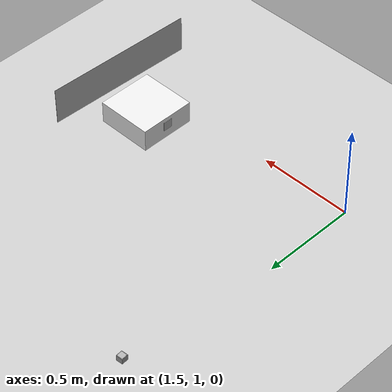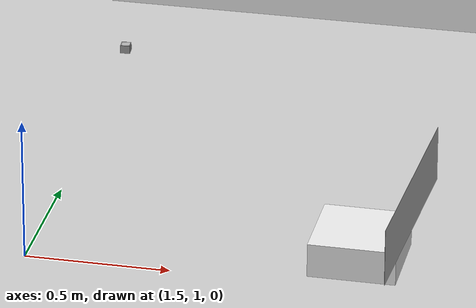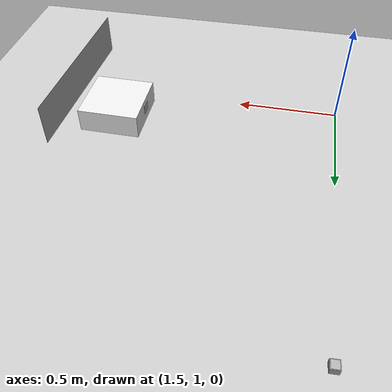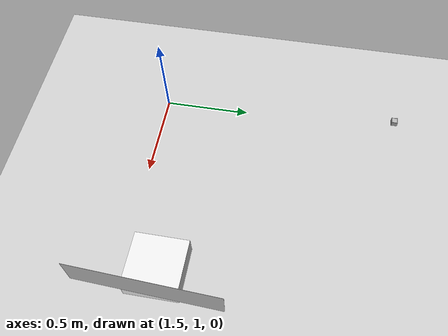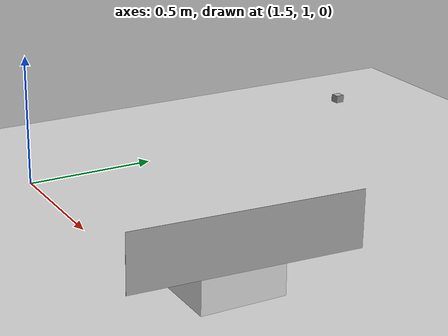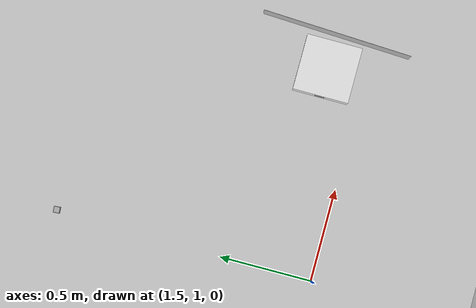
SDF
<sdf version="1.6">
 <world name="default">
  <model name="ground_plane">
   <static>1</static>
   <link name="link">
    <collision name="collision">
     <geometry><plane><normal>0 0 1</normal><size>100 100</size></plane></geometry>
     <surface><friction><ode><mu>100</mu><mu2>50</mu2></ode></friction></surface>
    </collision>
    <visual name="visual">
     <cast_shadows>0</cast_shadows>
     <geometry><plane><normal>0 0 1</normal><size>100 100</size></plane></geometry>
     <material>
      <script><uri>file://media/materials/scripts/gazebo.material</uri><name>Gazebo/Grey</name></script>
     </material>
    </visual>
   </link>
  </model>
  <model name="charge_pile_2">
   <link name="link_0">
    <pose>0.001175 0.064666 -0.007829 0 -0 0</pose>
    <inertial>
     <mass>1</mass>
     <inertia>
      <ixx>0.166667</ixx>
      <ixy>0</ixy>
      <ixz>0</ixz>
      <iyy>0.166667</iyy>
      <iyz>0</iyz>
      <izz>0.166667</izz>
     </inertia>
    </inertial>
    <visual name="visual">
     <geometry><box><size>0.3 0.3 0.12</size></box></geometry>
     <material>
      <lighting>1</lighting>
      <script><uri>file://media/materials/scripts/gazebo.material</uri><name>Gazebo/White</name></script>
      <ambient>0.3 0.3 0.3 1</ambient>
      <diffuse>0.7 0.7 0.7 1</diffuse>
      <specular>0.01 0.01 0.01 1</specular>
      <emissive>0 0 1 1</emissive>
      <shader type="vertex"><normal_map>__default__</normal_map></shader>
     </material>
    </visual>
    <collision name="collision">
     <geometry><box><size>0.3 0.3 0.12</size></box></geometry>
     <surface>
      <friction><ode><mu>100</mu><mu2>50</mu2></ode></friction>
      <bounce><restitution_coefficient>0</restitution_coefficient><threshold>1e+06</threshold></bounce>
      <contact>
       <collide_without_contact>0</collide_without_contact>
       <collide_without_contact_bitmask>1</collide_without_contact_bitmask>
       <collide_bitmask>1</collide_bitmask>
       <ode>
        <soft_cfm>0</soft_cfm>
        <soft_erp>0.2</soft_erp>
        <kp>1e+13</kp>
        <kd>1</kd>
        <max_vel>0.01</max_vel>
        <min_depth>0</min_depth>
       </ode>
       <bullet>
        <split_impulse>1</split_impulse>
        <split_impulse_penetration_threshold>-0.01</split_impulse_penetration_threshold>
        <soft_cfm>0</soft_cfm>
        <soft_erp>0.2</soft_erp>
        <kp>1e+13</kp>
        <kd>1</kd>
       </bullet>
      </contact>
     </surface>
    </collision>
   </link>
   <model name="ar_box0_50">
    <link name="link_0">
     <inertial>
      <mass>1.87342e-05</mass>
      <inertia>
       <ixx>9.25984e-08</ixx>
       <ixy>0</ixy>
       <ixz>0</ixz>
       <iyy>1.0155e-07</iyy>
       <iyz>0</iyz>
       <izz>1.22113e-07</izz>
      </inertia>
     </inertial>
     <visual name="visual">
      <geometry><box><size>0.05 0.05 0.05</size></box></geometry>
      <material>
       <lighting>1</lighting>
       <script>
        <uri>model://ar_box0_50/materials/scripts</uri>
        <uri>model://ar_box0_50/materials/textures</uri>
        <name>ArBox050/Image</name>
       </script>
       <ambient>0.3 0.3 0.3 1</ambient>
       <diffuse>0.7 0.7 0.7 1</diffuse>
       <specular>0.01 0.01 0.01 1</specular>
       <emissive>1 1 1 1</emissive>
      </material>
      <cast_shadows>0</cast_shadows>
     </visual>
     <collision name="collision">
      <geometry><box><size>0.05 0.05 0.05</size></box></geometry>
      <surface>
       <friction><ode><mu>100</mu><mu2>50</mu2></ode></friction>
       <bounce><restitution_coefficient>0</restitution_coefficient><threshold>1e+06</threshold></bounce>
       <contact>
        <collide_without_contact>0</collide_without_contact>
        <collide_without_contact_bitmask>1</collide_without_contact_bitmask>
        <collide_bitmask>1</collide_bitmask>
        <ode>
         <soft_cfm>0</soft_cfm>
         <soft_erp>0.2</soft_erp>
         <kp>1e+13</kp>
         <kd>1</kd>
         <max_vel>0.01</max_vel>
         <min_depth>0</min_depth>
        </ode>
        <bullet>
         <split_impulse>1</split_impulse>
         <split_impulse_penetration_threshold>-0.01</split_impulse_penetration_threshold>
         <soft_cfm>0</soft_cfm>
         <soft_erp>0.2</soft_erp>
         <kp>1e+13</kp>
         <kd>1</kd>
        </bullet>
       </contact>
      </surface>
     </collision>
    </link>
    <static>0</static>
    <pose>-0.001175 -0.064151 0.007829 0 -0 0</pose>
   </model>
   <joint name="link_0_JOINT_0" type="fixed">
    <parent>link_0</parent>
    <child>ar_box0_50::link_0</child>
    <physics>
     <ode><limit><cfm>0</cfm><erp>0.2</erp></limit><suspension><cfm>0</cfm><erp>0.2</erp></suspension></ode>
    </physics>
   </joint>
   <static>0</static>
   <pose>2.54114 1.20841 0.067829 0 0 -1.57555</pose>
  </model>
  <model name="Textcnc">
   <link name="link_0">
    <inertial>
     <mass>1</mass>
     <inertia>
      <ixx>0.166667</ixx>
      <ixy>0</ixy>
      <ixz>0</ixz>
      <iyy>0.166667</iyy>
      <iyz>0</iyz>
      <izz>0.166667</izz>
     </inertia>
    </inertial>
    <visual name="visual">
     <geometry><box><size>0.800001 0.001 0.2</size></box></geometry>
     <material>
      <lighting>1</lighting>
      <script>
       <uri>model://Text/materials/scripts</uri>
       <uri>model://Text/materials/textures</uri>
       <name>Cnc/Image</name>
      </script>
      <ambient>0.3 0.3 0.3 1</ambient>
      <diffuse>0.7 0.7 0.7 1</diffuse>
      <specular>0.01 0.01 0.01 1</specular>
      <emissive>0 0 0 1</emissive>
      <shader type="vertex"><normal_map>__default__</normal_map></shader>
     </material>
    </visual>
    <collision name="collision">
     <geometry><box><size>0.00100006 0.001 0.00100008</size></box></geometry>
     <surface>
      <friction>
       <ode><mu>1</mu><mu2>1</mu2><fdir1>0 0 0</fdir1><slip1>0</slip1><slip2>0</slip2></ode>
       <torsional>
        <coefficient>1</coefficient>
        <patch_radius>0</patch_radius>
        <surface_radius>0</surface_radius>
        <use_patch_radius>1</use_patch_radius>
        <ode><slip>0</slip></ode>
       </torsional>
      </friction>
      <bounce><restitution_coefficient>0</restitution_coefficient><threshold>1e+06</threshold></bounce>
      <contact>
       <collide_without_contact>0</collide_without_contact>
       <collide_without_contact_bitmask>1</collide_without_contact_bitmask>
       <collide_bitmask>1</collide_bitmask>
       <ode>
        <soft_cfm>0</soft_cfm>
        <soft_erp>0.2</soft_erp>
        <kp>1e+13</kp>
        <kd>1</kd>
        <max_vel>0.01</max_vel>
        <min_depth>0</min_depth>
       </ode>
       <bullet>
        <split_impulse>1</split_impulse>
        <split_impulse_penetration_threshold>-0.01</split_impulse_penetration_threshold>
        <soft_cfm>0</soft_cfm>
        <soft_erp>0.2</soft_erp>
        <kp>1e+13</kp>
        <kd>1</kd>
       </bullet>
      </contact>
     </surface>
    </collision>
   </link>
   <static>1</static>
   <pose>2.77965 1.20875 0.22821 0.000135 -0.008735 -1.61913</pose>
  </model>
  <model name="ar_box4_one">
   <link name="link_0">
    <inertial>
     <mass>0.2</mass>
     <inertia>
      <ixx>0.166667</ixx>
      <ixy>0</ixy>
      <ixz>0</ixz>
      <iyy>0.166667</iyy>
      <iyz>0</iyz>
      <izz>0.166667</izz>
     </inertia>
    </inertial>
    <visual name="visual">
     <geometry><box><size>0.035 0.035 0.03</size></box></geometry>
     <material>
      <lighting>1</lighting>
      <script><uri>file://media/materials/scripts/gazebo.material</uri><name>Gazebo/Grey</name></script>
      <ambient>0.3 0.3 0.3 1</ambient>
      <diffuse>0.7 0.7 0.7 1</diffuse>
      <specular>0.01 0.01 0.01 1</specular>
      <emissive>1 1 1 1</emissive>
      <shader type="vertex"><normal_map>__default__</normal_map></shader>
     </material>
    </visual>
    <collision name="collision">
     <geometry><cylinder><radius>0.0214</radius><length>0.03</length></cylinder></geometry>
     <surface>
      <friction><ode><mu>0.2</mu><mu2>0.2</mu2></ode></friction>
      <bounce><restitution_coefficient>0</restitution_coefficient><threshold>1e+06</threshold></bounce>
      <contact>
       <collide_without_contact>0</collide_without_contact>
       <collide_without_contact_bitmask>1</collide_without_contact_bitmask>
       <collide_bitmask>1</collide_bitmask>
       <ode>
        <soft_cfm>0</soft_cfm>
        <soft_erp>0.2</soft_erp>
        <kp>1e+13</kp>
        <kd>1</kd>
        <max_vel>0.01</max_vel>
        <min_depth>0</min_depth>
       </ode>
       <bullet>
        <split_impulse>1</split_impulse>
        <split_impulse_penetration_threshold>-0.01</split_impulse_penetration_threshold>
        <soft_cfm>0</soft_cfm>
        <soft_erp>0.2</soft_erp>
        <kp>1e+13</kp>
        <kd>1</kd>
       </bullet>
      </contact>
     </surface>
    </collision>
   </link>
   <model name="ar_box4">
    <link name="link_0">
     <inertial>
      <mass>1.87342e-05</mass>
      <inertia>
       <ixx>9.25984e-08</ixx>
       <ixy>0</ixy>
       <ixz>0</ixz>
       <iyy>1.0155e-07</iyy>
       <iyz>0</iyz>
       <izz>1.22113e-07</izz>
      </inertia>
     </inertial>
     <visual name="visual">
      <geometry><box><size>0.0298 0.0298 0.0305</size></box></geometry>
      <material>
       <lighting>1</lighting>
       <script>
        <uri>model://ar_box4/materials/scripts</uri>
        <uri>model://ar_box4/materials/textures</uri>
        <name>ArBox4/Image</name>
       </script>
       <ambient>0.3 0.3 0.3 1</ambient>
       <diffuse>0.7 0.7 0.7 1</diffuse>
       <specular>0.01 0.01 0.01 1</specular>
       <emissive>1 1 1 1</emissive>
      </material>
      <cast_shadows>0</cast_shadows>
     </visual>
     <collision name="collision">
      <geometry><box><size>0.03 0.03 0.03</size></box></geometry>
      <surface>
       <friction><ode><mu>0.2</mu><mu2>0.2</mu2></ode></friction>
       <bounce><restitution_coefficient>0</restitution_coefficient><threshold>1e+06</threshold></bounce>
       <contact>
        <collide_without_contact>0</collide_without_contact>
        <collide_without_contact_bitmask>1</collide_without_contact_bitmask>
        <collide_bitmask>1</collide_bitmask>
        <ode>
         <soft_cfm>0</soft_cfm>
         <soft_erp>0.2</soft_erp>
         <kp>1e+13</kp>
         <kd>1</kd>
         <max_vel>0.01</max_vel>
         <min_depth>0</min_depth>
        </ode>
        <bullet>
         <split_impulse>1</split_impulse>
         <split_impulse_penetration_threshold>-0.01</split_impulse_penetration_threshold>
         <soft_cfm>0</soft_cfm>
         <soft_erp>0.2</soft_erp>
         <kp>1e+13</kp>
         <kd>1</kd>
        </bullet>
       </contact>
      </surface>
     </collision>
    </link>
    <static>0</static>
   </model>
   <joint name="link_0_JOINT_0" type="fixed">
    <parent>link_0</parent>
    <child>ar_box4::link_0</child>
    <physics>
     <ode><limit><cfm>0</cfm><erp>0.2</erp></limit><suspension><cfm>0</cfm><erp>0.2</erp></suspension></ode>
    </physics>
   </joint>
   <static>0</static>
   <pose>1.52136 2.38951 0.135005 3.14152 -0.000183 1.62757</pose>
  </model>
 </world>
</sdf>
